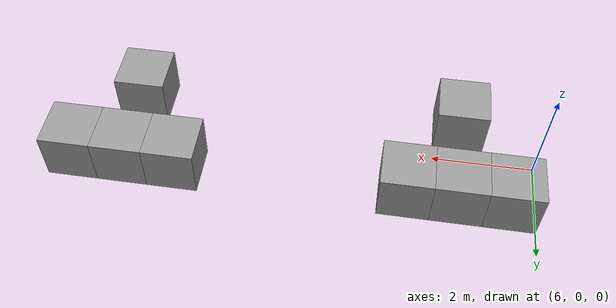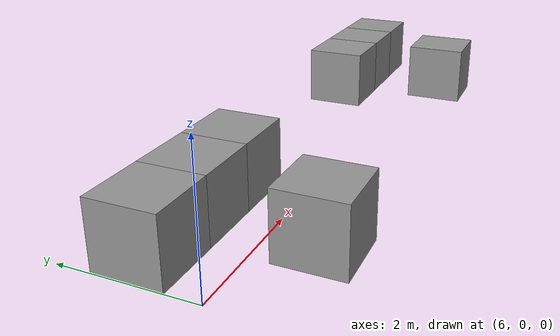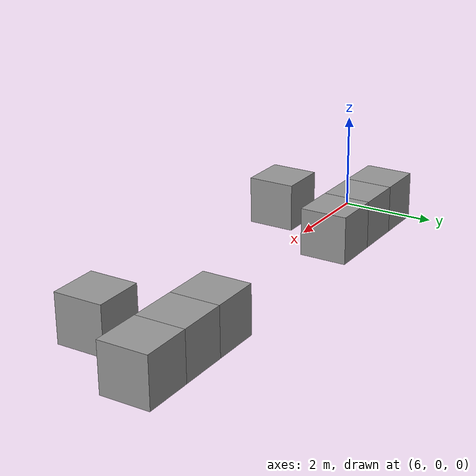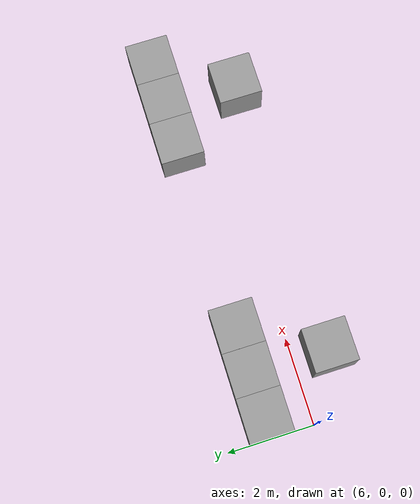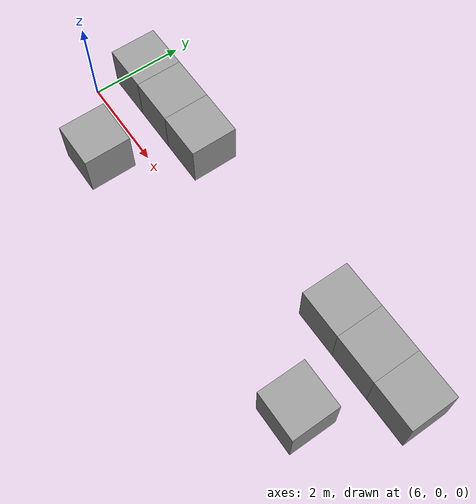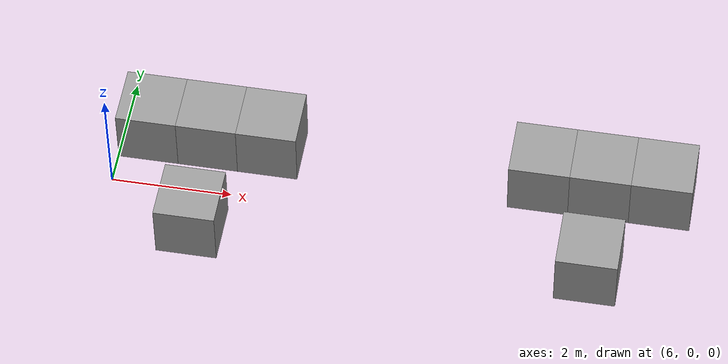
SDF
<sdf version="1.7">
 <world name="default">
  <light name="sun" type="directional">
   <pose>0 0 10 0 -0 0</pose>
   <diffuse>0.8 0.8 0.8 1</diffuse>
   <specular>0.2 0.2 0.2 1</specular>
   <attenuation>
    <range>1000</range>
    <constant>0.9</constant>
    <linear>0.01</linear>
    <quadratic>0.001</quadratic>
   </attenuation>
   <direction>-0.5 0.1 -0.9</direction>
   <spot><inner_angle>0</inner_angle><outer_angle>0</outer_angle><falloff>0</falloff></spot>
  </light>
  <plugin name="ros_interface_plugin" filename="librotors_gazebo_ros_interface_plugin.so"/>
  <spherical_coordinates>
   <surface_model>EARTH_WGS84</surface_model>
   <latitude_deg>47.3667</latitude_deg>
   <longitude_deg>8.55</longitude_deg>
   <elevation>500</elevation>
   <heading_deg>0</heading_deg>
  </spherical_coordinates>
  <physics type="ode">
   <ode>
    <solver>
     <type>quick</type>
     <iters>1000</iters>
     <sor>1.3</sor>
     <use_dynamic_moi_rescaling>0</use_dynamic_moi_rescaling>
    </solver>
    <constraints>
     <cfm>0</cfm>
     <erp>0.2</erp>
     <contact_max_correcting_vel>100</contact_max_correcting_vel>
     <contact_surface_layer>0.001</contact_surface_layer>
    </constraints>
   </ode>
   <max_step_size>0.001</max_step_size>
   <real_time_factor>1</real_time_factor>
   <real_time_update_rate>1000</real_time_update_rate>
   <gravity>0 0 -9.8</gravity>
  </physics>
  <gravity>0 0 -9.8</gravity>
  <magnetic_field>6e-06 2.3e-05 -4.2e-05</magnetic_field>
  <atmosphere type="adiabatic"/>
  <scene><ambient>0.4 0.4 0.4 1</ambient><background>0.7 0.7 0.7 1</background><shadows>1</shadows></scene>
  <model name="unit_box_3">
   <pose>8.5 1 0.494157 0 -0 0</pose>
   <link name="link">
    <inertial>
     <mass>1</mass>
     <inertia>
      <ixx>0.166667</ixx>
      <ixy>0</ixy>
      <ixz>0</ixz>
      <iyy>0.166667</iyy>
      <iyz>0</iyz>
      <izz>0.166667</izz>
     </inertia>
    </inertial>
    <collision name="collision"><geometry><box><size>1 1 1</size></box></geometry></collision>
    <visual name="visual">
     <geometry><box><size>1 1 1</size></box></geometry>
     <material>
      <script><name>Gazebo/Grey</name><uri>file://media/materials/scripts/gazebo.material</uri></script>
     </material>
    </visual>
   </link>
  </model>
  <model name="unit_box_4">
   <pose>7.5 -0.8 0.494157 0 -0 0</pose>
   <link name="link">
    <inertial>
     <mass>1</mass>
     <inertia>
      <ixx>0.166667</ixx>
      <ixy>0</ixy>
      <ixz>0</ixz>
      <iyy>0.166667</iyy>
      <iyz>0</iyz>
      <izz>0.166667</izz>
     </inertia>
    </inertial>
    <collision name="collision"><geometry><box><size>1 1 1</size></box></geometry></collision>
    <visual name="visual">
     <geometry><box><size>1 1 1</size></box></geometry>
     <material>
      <script><name>Gazebo/Grey</name><uri>file://media/materials/scripts/gazebo.material</uri></script>
     </material>
    </visual>
   </link>
  </model>
  <model name="unit_box_5">
   <pose>15 0.999999 0.494157 0 -0 -1e-06</pose>
   <link name="link">
    <inertial>
     <mass>1</mass>
     <inertia>
      <ixx>0.166667</ixx>
      <ixy>0</ixy>
      <ixz>0</ixz>
      <iyy>0.166667</iyy>
      <iyz>0</iyz>
      <izz>0.166667</izz>
     </inertia>
    </inertial>
    <collision name="collision"><geometry><box><size>1 1 1</size></box></geometry></collision>
    <visual name="visual">
     <geometry><box><size>1 1 1</size></box></geometry>
     <material>
      <script><name>Gazebo/Grey</name><uri>file://media/materials/scripts/gazebo.material</uri></script>
     </material>
    </visual>
   </link>
  </model>
  <model name="unit_box_5_clone">
   <pose>14 0.999997 0.494157 0 -0 0</pose>
   <link name="link">
    <inertial>
     <mass>1</mass>
     <inertia>
      <ixx>0.166667</ixx>
      <ixy>0</ixy>
      <ixz>0</ixz>
      <iyy>0.166667</iyy>
      <iyz>0</iyz>
      <izz>0.166667</izz>
     </inertia>
    </inertial>
    <collision name="collision"><geometry><box><size>1 1 1</size></box></geometry></collision>
    <visual name="visual">
     <geometry><box><size>1 1 1</size></box></geometry>
     <material>
      <script><name>Gazebo/Grey</name><uri>file://media/materials/scripts/gazebo.material</uri></script>
     </material>
    </visual>
   </link>
  </model>
  <model name="unit_box_5_clone_clone">
   <pose>13 1 0.494157 0 -0 6e-06</pose>
   <link name="link">
    <inertial>
     <mass>1</mass>
     <inertia>
      <ixx>0.166667</ixx>
      <ixy>0</ixy>
      <ixz>0</ixz>
      <iyy>0.166667</iyy>
      <iyz>0</iyz>
      <izz>0.166667</izz>
     </inertia>
    </inertial>
    <collision name="collision"><geometry><box><size>1 1 1</size></box></geometry></collision>
    <visual name="visual">
     <geometry><box><size>1 1 1</size></box></geometry>
     <material>
      <script><name>Gazebo/Grey</name><uri>file://media/materials/scripts/gazebo.material</uri></script>
     </material>
    </visual>
   </link>
  </model>
  <model name="unit_box_5_clone_clone_clone">
   <pose>7.49999 0.999993 0.494157 0 -0 -3e-06</pose>
   <link name="link">
    <inertial>
     <mass>1</mass>
     <inertia>
      <ixx>0.166667</ixx>
      <ixy>0</ixy>
      <ixz>0</ixz>
      <iyy>0.166667</iyy>
      <iyz>0</iyz>
      <izz>0.166667</izz>
     </inertia>
    </inertial>
    <collision name="collision"><geometry><box><size>1 1 1</size></box></geometry></collision>
    <visual name="visual">
     <geometry><box><size>1 1 1</size></box></geometry>
     <material>
      <script><name>Gazebo/Grey</name><uri>file://media/materials/scripts/gazebo.material</uri></script>
     </material>
    </visual>
   </link>
  </model>
  <model name="unit_box_5_clone_clone_clone_0">
   <pose>6.49998 1 0.494157 0 -0 -3e-06</pose>
   <link name="link">
    <inertial>
     <mass>1</mass>
     <inertia>
      <ixx>0.166667</ixx>
      <ixy>0</ixy>
      <ixz>0</ixz>
      <iyy>0.166667</iyy>
      <iyz>0</iyz>
      <izz>0.166667</izz>
     </inertia>
    </inertial>
    <collision name="collision"><geometry><box><size>1 1 1</size></box></geometry></collision>
    <visual name="visual">
     <geometry><box><size>1 1 1</size></box></geometry>
     <material>
      <script><name>Gazebo/Grey</name><uri>file://media/materials/scripts/gazebo.material</uri></script>
     </material>
    </visual>
   </link>
  </model>
  <model name="unit_box_4_clone">
   <pose>14 -0.7 0.494157 0 -0 0</pose>
   <link name="link">
    <inertial>
     <mass>1</mass>
     <inertia>
      <ixx>0.166667</ixx>
      <ixy>0</ixy>
      <ixz>0</ixz>
      <iyy>0.166667</iyy>
      <iyz>0</iyz>
      <izz>0.166667</izz>
     </inertia>
    </inertial>
    <collision name="collision"><geometry><box><size>1 1 1</size></box></geometry></collision>
    <visual name="visual">
     <geometry><box><size>1 1 1</size></box></geometry>
     <material>
      <script><name>Gazebo/Grey</name><uri>file://media/materials/scripts/gazebo.material</uri></script>
     </material>
    </visual>
   </link>
  </model>
 </world>
</sdf>
